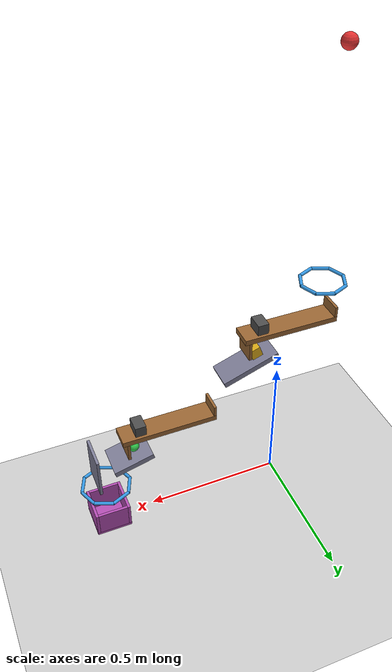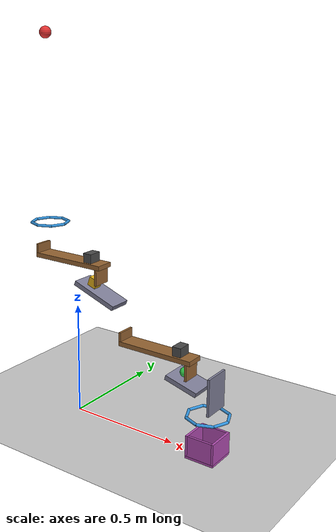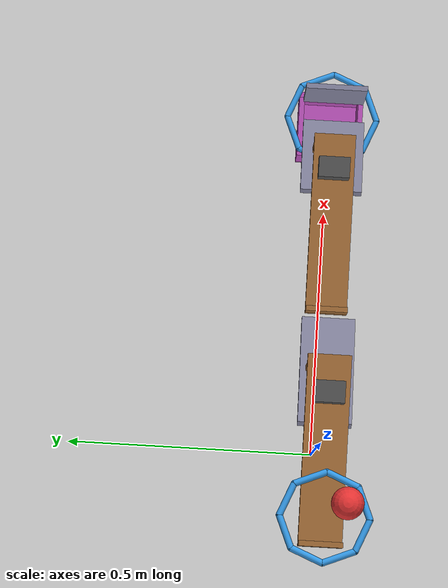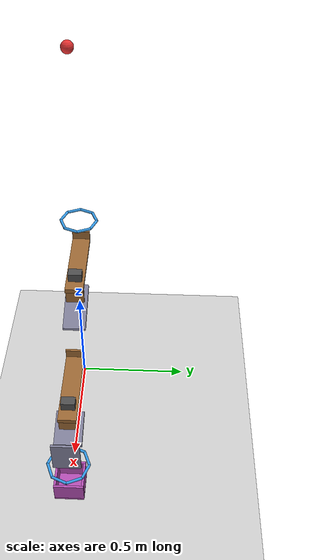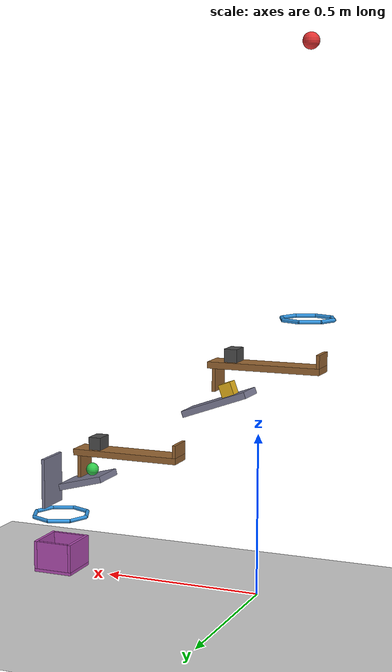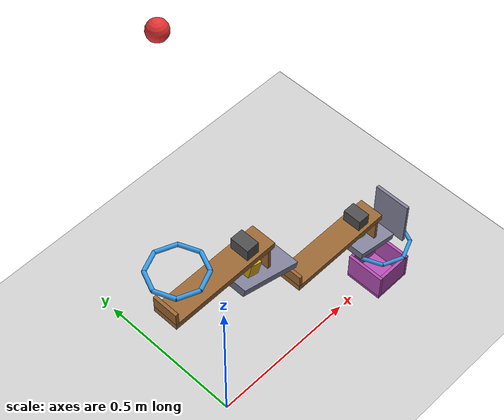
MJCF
<mujoco model="double_trapdoor_chain">
  <compiler angle="radian"/>
  <option timestep="0.002" gravity="0 0 -9.81"/>
  <worldbody>
    <light name="light" pos="0.3 -1 2.5" dir="0 0.4 -1"/>
    <geom name="floor" type="plane" size="2 2 0.1" rgba="0.8 0.8 0.8 1"/>

    <body name="ball1" pos="-0.15 0 1.6583">
      <freejoint name="ball1_free"/>
      <geom name="ball1_geom" type="sphere" size="0.025" mass="0.1" friction="0.5 0.005 0.0001" rgba="0.9 0.2 0.2 1"/>
    </body>

    <body name="hoop1" pos="-0.15 0 0.8583">
      <geom name="hoop1_s0" type="capsule" size="0.006" fromto="0.08 0 0 0.0566 0.0566 0" rgba="0.2 0.6 0.9 1"/>
      <geom name="hoop1_s1" type="capsule" size="0.006" fromto="0.0566 0.0566 0 0 0.08 0" rgba="0.2 0.6 0.9 1"/>
      <geom name="hoop1_s2" type="capsule" size="0.006" fromto="0 0.08 0 -0.0566 0.0566 0" rgba="0.2 0.6 0.9 1"/>
      <geom name="hoop1_s3" type="capsule" size="0.006" fromto="-0.0566 0.0566 0 -0.08 0 0" rgba="0.2 0.6 0.9 1"/>
      <geom name="hoop1_s4" type="capsule" size="0.006" fromto="-0.08 0 0 -0.0566 -0.0566 0" rgba="0.2 0.6 0.9 1"/>
      <geom name="hoop1_s5" type="capsule" size="0.006" fromto="-0.0566 -0.0566 0 0 -0.08 0" rgba="0.2 0.6 0.9 1"/>
      <geom name="hoop1_s6" type="capsule" size="0.006" fromto="0 -0.08 0 0.0566 -0.0566 0" rgba="0.2 0.6 0.9 1"/>
      <geom name="hoop1_s7" type="capsule" size="0.006" fromto="0.0566 -0.0566 0 0.08 0 0" rgba="0.2 0.6 0.9 1"/>
    </body>

    <body name="flap1" pos="0 0 0.7083">
      <joint name="flap1_hinge" type="hinge" axis="0 1 0" pos="0 0 0" limited="true" range="-0.5 0" damping="0.001" armature="0.0001"/>
      <geom name="flap1_plate" type="box" pos="-0.025 0 0" size="0.175 0.04 0.01" mass="0.05" friction="0.3 0.005 0.0001" rgba="0.6 0.4 0.2 1"/>
      <geom name="flap1_lip" type="box" pos="-0.195 0 0.03" size="0.005 0.04 0.02" mass="0.005" friction="0.3 0.005 0.0001" rgba="0.6 0.4 0.2 1"/>
      <geom name="flap1_prong" type="box" pos="0.13 0 -0.045" size="0.005 0.04 0.035" mass="0.01" friction="0.3 0.005 0.0001" rgba="0.6 0.4 0.2 1"/>
      <geom name="flap1_counterweight" type="box" pos="0.08 0 0.03" size="0.02 0.03 0.02" mass="0.1" friction="0.3 0.005 0.0001" rgba="0.3 0.3 0.3 1"/>
    </body>

    <body name="ramp1" pos="0 0 0">
      <geom name="ramp1_surface" type="box" pos="0.1274 0 0.5885" euler="0 0.349066 0" size="0.1073 0.05 0.01" friction="0.2 0.005 0.0001" rgba="0.5 0.5 0.6 1"/>
    </body>

    <body name="block" pos="0.0975 0 0.6313" quat="0.98481 0 0.17365 0">
      <freejoint name="block_free"/>
      <geom name="block_geom" type="box" size="0.02 0.02 0.02" mass="0.05" friction="0.2 0.005 0.0001" rgba="0.9 0.7 0.1 1"/>
    </body>

    <body name="flap2" pos="0.4545 0 0.40">
      <joint name="flap2_hinge" type="hinge" axis="0 1 0" pos="0 0 0" limited="true" range="-0.5 0" damping="0.001" armature="0.0001"/>
      <geom name="flap2_plate" type="box" pos="-0.025 0 0" size="0.175 0.04 0.01" mass="0.05" friction="0.3 0.005 0.0001" rgba="0.6 0.4 0.2 1"/>
      <geom name="flap2_lip" type="box" pos="-0.195 0 0.03" size="0.005 0.04 0.02" mass="0.005" friction="0.3 0.005 0.0001" rgba="0.6 0.4 0.2 1"/>
      <geom name="flap2_prong" type="box" pos="0.13 0 -0.045" size="0.005 0.04 0.035" mass="0.01" friction="0.3 0.005 0.0001" rgba="0.6 0.4 0.2 1"/>
      <geom name="flap2_counterweight" type="box" pos="0.08 0 0.03" size="0.02 0.03 0.02" mass="0.055" friction="0.3 0.005 0.0001" rgba="0.3 0.3 0.3 1"/>
    </body>

    <body name="ramp2" pos="0 0 0">
      <geom name="ramp2_surface" type="box" pos="0.5741 0 0.3045" euler="0 0.261799 0" size="0.0748 0.06 0.01" friction="0.5 0.005 0.0001" rgba="0.5 0.5 0.6 1"/>
      <geom name="ramp2_backstop" type="box" pos="0.7039 0 0.29" size="0.005 0.06 0.08" friction="0.5 0.005 0.0001" rgba="0.5 0.5 0.6 1"/>
    </body>

    <body name="ball2" pos="0.5575 0 0.34">
      <freejoint name="ball2_free"/>
      <geom name="ball2_geom" type="sphere" size="0.02" mass="0.03" condim="6" friction="0.8 0.005 0.002" rgba="0.2 0.8 0.3 1"/>
    </body>

    <body name="hoop2" pos="0.672 0 0.18">
      <geom name="hoop2_s0" type="capsule" size="0.006" fromto="0.09 0 0 0.0636 0.0636 0" rgba="0.2 0.6 0.9 1"/>
      <geom name="hoop2_s1" type="capsule" size="0.006" fromto="0.0636 0.0636 0 0 0.09 0" rgba="0.2 0.6 0.9 1"/>
      <geom name="hoop2_s2" type="capsule" size="0.006" fromto="0 0.09 0 -0.0636 0.0636 0" rgba="0.2 0.6 0.9 1"/>
      <geom name="hoop2_s3" type="capsule" size="0.006" fromto="-0.0636 0.0636 0 -0.09 0 0" rgba="0.2 0.6 0.9 1"/>
      <geom name="hoop2_s4" type="capsule" size="0.006" fromto="-0.09 0 0 -0.0636 -0.0636 0" rgba="0.2 0.6 0.9 1"/>
      <geom name="hoop2_s5" type="capsule" size="0.006" fromto="-0.0636 -0.0636 0 0 -0.09 0" rgba="0.2 0.6 0.9 1"/>
      <geom name="hoop2_s6" type="capsule" size="0.006" fromto="0 -0.09 0 0.0636 -0.0636 0" rgba="0.2 0.6 0.9 1"/>
      <geom name="hoop2_s7" type="capsule" size="0.006" fromto="0.0636 -0.0636 0 0.09 0 0" rgba="0.2 0.6 0.9 1"/>
    </body>

    <body name="cup" pos="0.672 0 0">
      <geom name="cup_bottom" type="box" pos="0 0 0.005" size="0.065 0.065 0.005" friction="0.8 0.005 0.0001" rgba="0.7 0.3 0.7 1"/>
      <geom name="cup_wall_px" type="box" pos="0.06 0 0.055" size="0.005 0.065 0.045" rgba="0.7 0.3 0.7 1"/>
      <geom name="cup_wall_nx" type="box" pos="-0.06 0 0.055" size="0.005 0.065 0.045" rgba="0.7 0.3 0.7 1"/>
      <geom name="cup_wall_py" type="box" pos="0 0.06 0.055" size="0.055 0.005 0.045" rgba="0.7 0.3 0.7 1"/>
      <geom name="cup_wall_ny" type="box" pos="0 -0.06 0.055" size="0.055 0.005 0.045" rgba="0.7 0.3 0.7 1"/>
    </body>
  </worldbody>
</mujoco>
